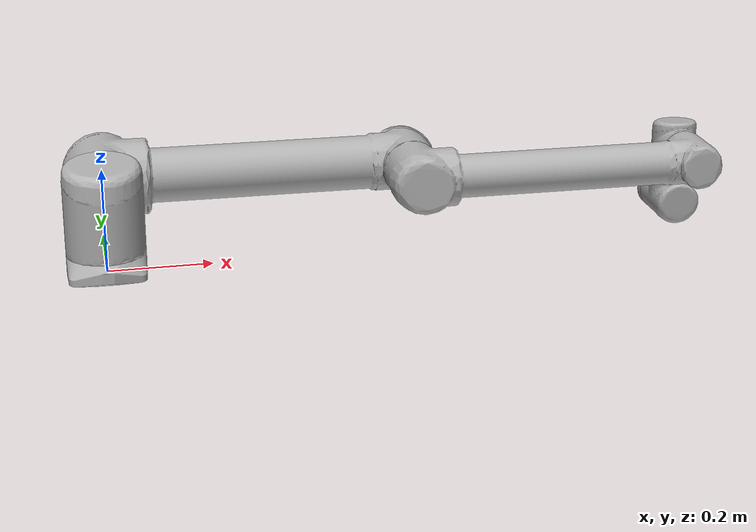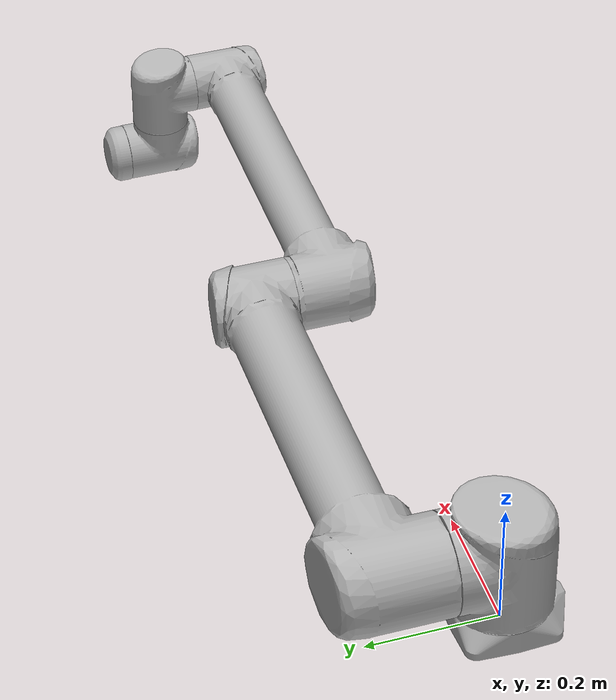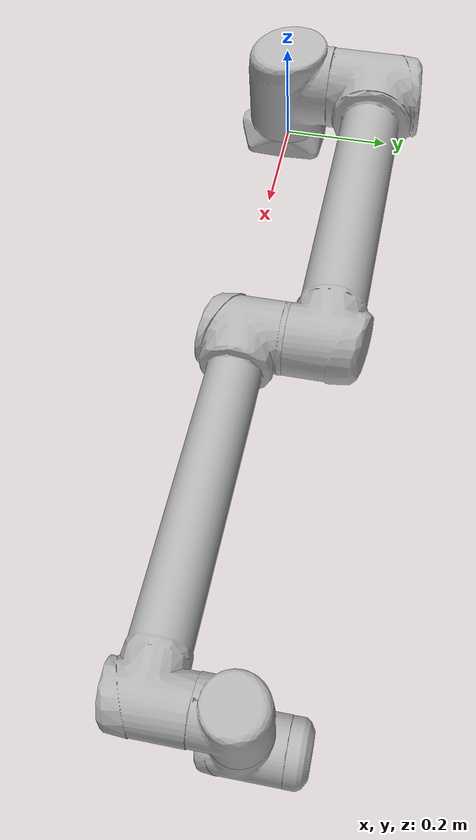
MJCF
<mujoco model="ur10_robot">
      <compiler angle="radian" autolimits="true"/>

  <option integrator="implicitfast" timestep="0.002"/>

  <asset>
    <mesh name="base" content_type="model/stl" file="../assets/meshes/ur10/collision/base.stl"/>
    <mesh name="shoulder" content_type="model/stl" file="../assets/meshes/ur10/collision/shoulder.stl"/>
    <mesh name="upperarm" content_type="model/stl" file="../assets/meshes/ur10/collision/upperarm.stl"/>
    <mesh name="forearm" content_type="model/stl" file="../assets/meshes/ur10/collision/forearm.stl"/>
    <mesh name="wrist1" content_type="model/stl" file="../assets/meshes/ur10/collision/wrist1.stl"/>
    <mesh name="wrist2" content_type="model/stl" file="../assets/meshes/ur10/collision/wrist2.stl"/>
    <mesh name="wrist3" content_type="model/stl" file="../assets/meshes/ur10/collision/wrist3.stl"/>
  </asset>

  <worldbody>
    <geom quat="-1 0 0 0" type="mesh" rgba="0.7 0.7 0.7 1" mesh="base"/>
    <body name="shoulder_link" pos="0 0 0.1273" quat="0 0 0 1" gravcomp="1">
      <inertial pos="0.021 -0.027 0" quat="0.988634 -0.000680926 0.148578 -0.0229591" mass="7.1" diaginertia="0.0353866 0.0352903 0.0202532"/>
      <joint name="shoulder_pan_joint" range="-3.14159 3.14159" actuatorfrcrange="-330 330"/>
      <geom quat="0 0 0 1" type="mesh" rgba="0.7 0.7 0.7 1" mesh="shoulder"/>
      <body name="upper_arm_link" quat="0.707107 0.707107 0 0" gravcomp="1">
        <inertial pos="-0.232 0 0.158" quat="0.500033 0.499784 0.489585 0.510381" mass="12.7" diaginertia="0.77068 0.769758 0.0278114"/>
        <joint name="shoulder_lift_joint" range="-3.14159 3.14159" actuatorfrcrange="-330 330"/>
        <geom pos="0 0 0.220941" quat="0.5 0.5 -0.5 -0.5" type="mesh" rgba="0.7 0.7 0.7 1" mesh="upperarm"/>
        <body name="forearm_link" pos="-0.612 0 0" gravcomp="1" >
          <inertial pos="-0.3323 0 0.068" quat="0.492051 0.507971 0.507346 0.492394" mass="4.27" diaginertia="0.30928 0.306743 0.00985709"/>
          <joint name="elbow_joint" range="-6.28319 6.28319" actuatorfrcrange="-150 150"/>
          <geom pos="0 0 0.049042" quat="0.5 0.5 -0.5 -0.5" type="mesh" rgba="0.7 0.7 0.7 1" mesh="forearm"/>
          <body name="wrist_1_link" pos="-0.5723 0 0.163941" gravcomp="1" >
            <inertial pos="0 -0.018 0.007" quat="0.525776 0.850564 -0.0100431 9.45801e-05" mass="2" diaginertia="0.00296017 0.00269992 0.00209991"/>
            <joint name="wrist_1_joint" range="-6.28319 6.28319" actuatorfrcrange="-56 56"/>
            <geom pos="0 0 -0.1149" quat="0.707107 0.707107 0 0" type="mesh" rgba="0.7 0.7 0.7 1" mesh="wrist1"/>
            <body name="wrist_2_link" pos="0 -0.1157 -2.37305e-11" quat="0.707107 0.707107 0 0" gravcomp="1" >
              <inertial pos="0 0.018 -0.007" quat="0.525776 0.850564 -0.0100431 9.45801e-05" mass="2" diaginertia="0.00296017 0.00269992 0.00209991"/>
              <joint name="wrist_2_joint" range="-6.28319 6.28319" actuatorfrcrange="-56 56"/>
              <geom pos="0 0 -0.1158" quat="1 0 0 0" type="mesh" rgba="0.7 0.7 0.7 1" mesh="wrist2"/>
              <body name="wrist_3_link" pos="0 0.0922 -1.89105e-11" quat="0.707107 -0.707107 0 0" gravcomp="1" >
                <inertial pos="0 0 -0.026" quat="0.707107 0 0 0.707107" mass="0.365" diaginertia="0.00041 0.0004 0.00034"/>
                <joint name="wrist_3_joint" range="-6.28319 6.28319" actuatorfrcrange="-56 56"/>
                <geom pos="0 0 -0.0922" quat="0.707107 0.707107 0 0" type="mesh" rgba="0.7 0.7 0.7 1" mesh="wrist3"/>
              </body>
            </body>
          </body>
        </body>
      </body>
    </body>
  </worldbody>
    <actuator>
    <position name="shoulder_pan_actuator" joint="shoulder_pan_joint" kp="2000" kv="200" ctrlrange="-3.14159 3.14159"/>
    <position name="shoulder_lift_actuator" joint="shoulder_lift_joint" kp="2000" kv="200" ctrlrange="-3.14159 3.14159"/>
    <position name="elbow_actuator" joint="elbow_joint" kp="1500" kv="150" ctrlrange="-6.28319 6.28319"/>
    <position name="wrist_1_actuator" joint="wrist_1_joint" kp="150" kv="30" ctrlrange="-6.28319 6.28319"/>
    <position name="wrist_2_actuator" joint="wrist_2_joint" kp="150" kv="30" ctrlrange="-6.28319 6.28319"/>
    <position name="wrist_3_actuator" joint="wrist_3_joint" kp="150" kv="30" ctrlrange="-6.28319 6.28319"/>
  </actuator>
</mujoco>
